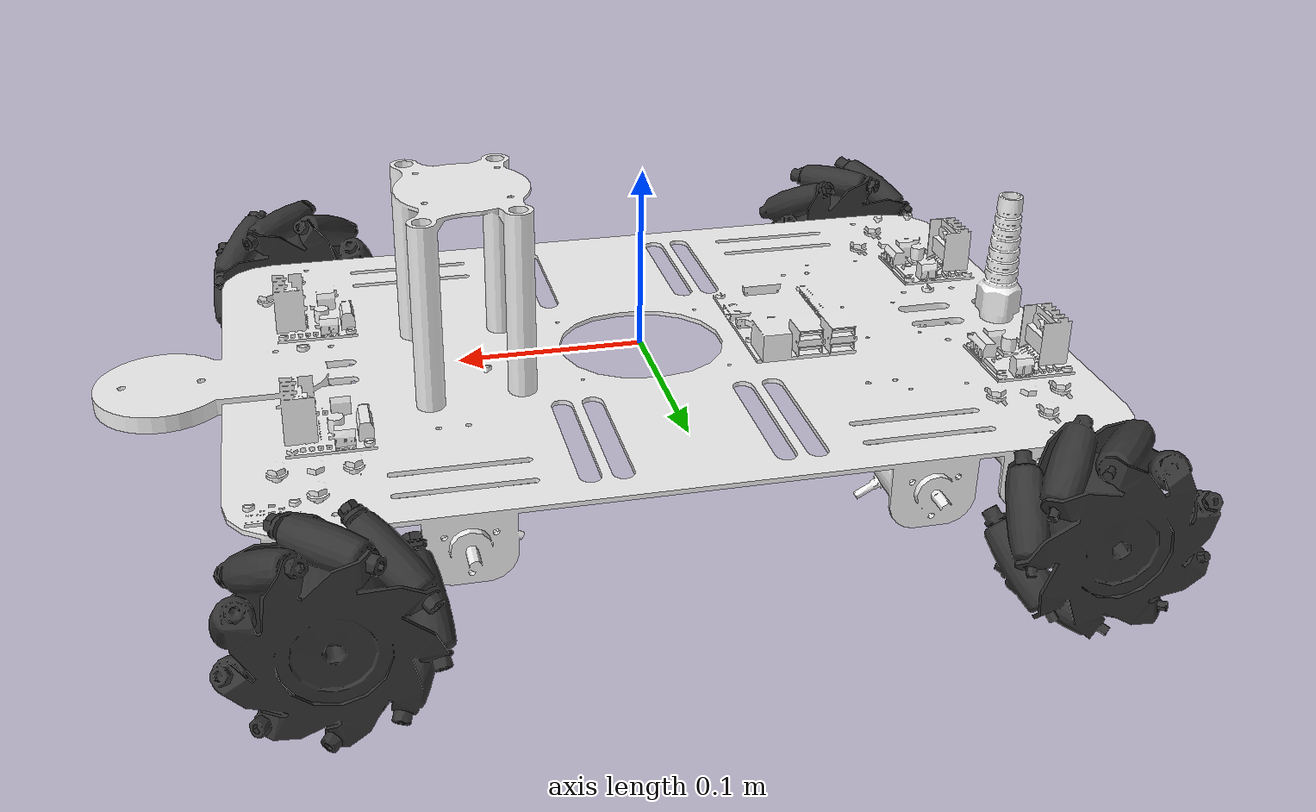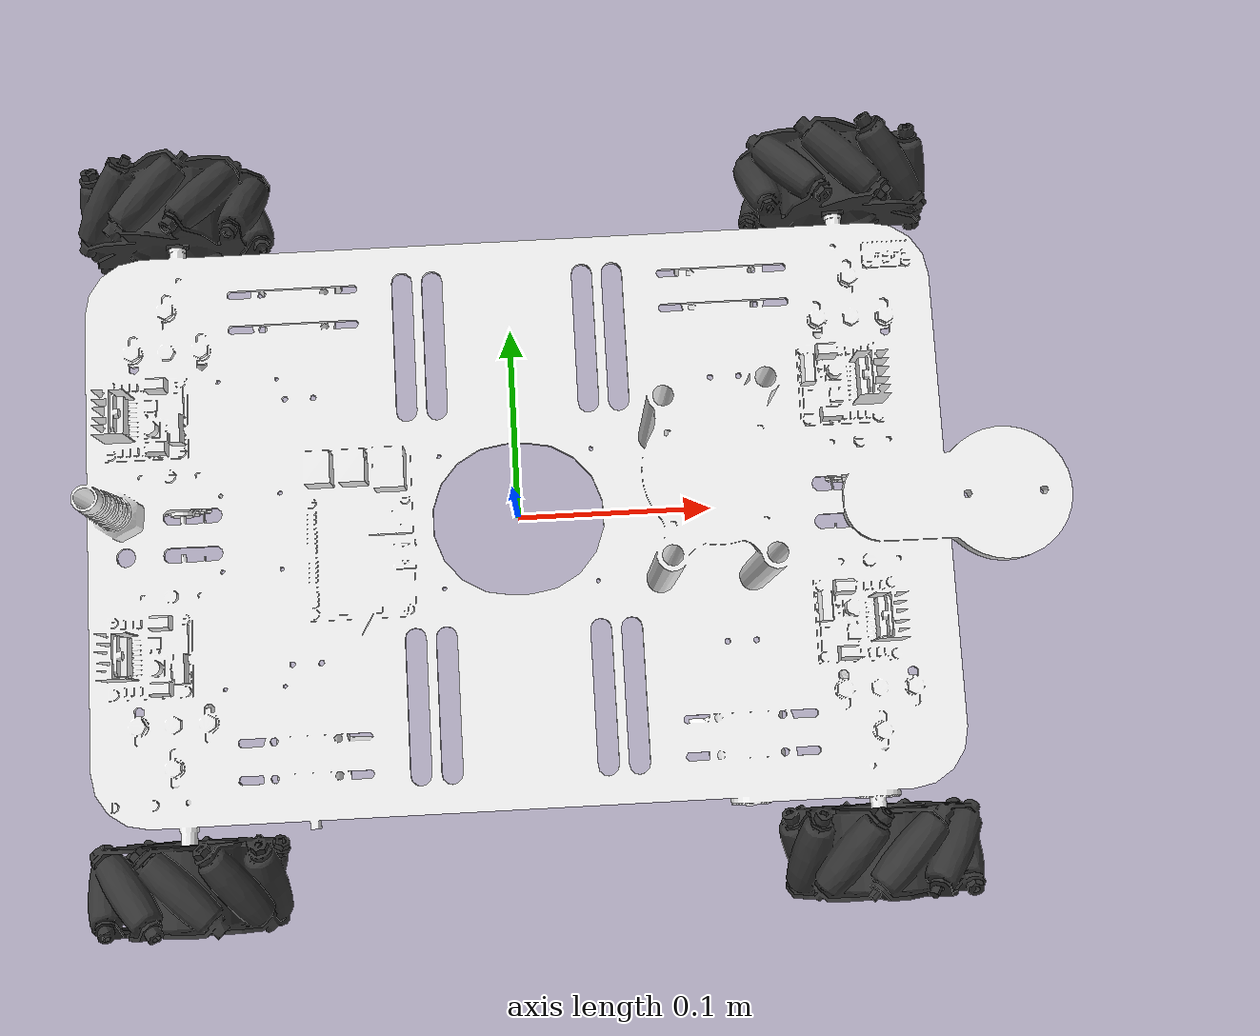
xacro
<?xml version="1.0"?>
<robot xmlns:xacro="http://www.ros.org/wiki/xacro">

  <!-- Robot base properties -->
  <xacro:property name="wheel_separation_width" value="0.402" />
  <xacro:property name="wheel_separation_length" value="0.363" />
  <xacro:property name="wheel_height" value="-0.0285" />
  <xacro:property name="wheel_radius" value="0.075" />
  <xacro:property name="wheel_width" value="0.037" />

  <!-- Material definitions -->
  <xacro:macro name="material_chassis">
    <material name="chassis_material">
      <color rgba="0.95 0.95 0.95 1" />
    </material>
  </xacro:macro>

  <xacro:macro name="material_wheel">
    <material name="wheel_material">
      <color rgba="0.2 0.2 0.2 1" />
    </material>
  </xacro:macro>

  <!-- base link definition -->
  <link name="base_link">
  </link>
  <!-- chassis link definition -->

  <link name="chassis_link">
    <inertial>
      <origin xyz="0.0099205 -0.00027461 -0.012024" rpy="0 0 0" />
      <mass value="1.1181" />
      <inertia
        ixx="0.00254" ixy="-1.1679E-08" ixz="8.617E-07"
        iyy="0.0054872" iyz="7.5586E-08" izz="0.0077966" />
    </inertial>
    <visual>
      <origin xyz="0 0 0" rpy="0 0 0" />
      <geometry>
        <mesh filename="file://$(find mecanum_description)/meshes/chassis_link.STL" />
      </geometry>
      <xacro:material_chassis />
    </visual>
    <collision>
      <origin xyz="0 0 0" rpy="0 0 0" />
      <geometry>
        <mesh filename="file://$(find mecanum_description)/meshes/chassis_link.STL" />
      </geometry>
    </collision>
  </link>

  <joint name="base_chassis_joint" type="fixed">
    <parent link="base_link" />
    <child link="chassis_link" />
  </joint>

  <!-- Wheel macro -->
  <xacro:macro name="wheel" params="prefix parent x y z rpy axis_xyz">
    <link name="${prefix}_wheel_link">
      <inertial>
        <origin xyz="-4.136E-10 1.1142E-10 -0.018573" rpy="0 0 0" />
        <mass value="0.22689" />
        <inertia
          ixx="6.1082E-05" ixy="-7.4147E-16" ixz="3.0289E-13"
          iyy="6.1082E-05" iyz="1.2454E-12" izz="8.2539E-05" />
      </inertial>
      <visual>
        <origin xyz="0 0 0" rpy="0 0 0" />
        <geometry>
          <mesh filename="file://$(find mecanum_description)//meshes/${prefix}_wheel_link.STL" />
        </geometry>
        <xacro:material_wheel />
      </visual>
      <collision>
        <origin xyz="0 0 0" rpy="0 0 0" />
        <geometry>
          <mesh filename="file://$(find mecanum_description)/meshes/${prefix}_wheel_link.STL" />
        </geometry>
      </collision>
    </link>

    <joint name="chassis_${prefix}_wheel_joint" type="continuous">
      <origin xyz="${x} ${y} ${z}" rpy="${rpy}" />
      <parent link="${parent}" />
      <child link="${prefix}_wheel_link" />
      <axis xyz="${axis_xyz}" />
    </joint>
  </xacro:macro>

  <!-- Instantiate all four wheels -->
  <xacro:macro name="robot_wheels" params="parent">
    <xacro:wheel prefix="fr" parent="${parent}"
      x="0.18096" y="-0.20094" z="${wheel_height}"
      rpy="1.5708 0 0" axis_xyz="0 0 1" />

    <xacro:wheel prefix="fl" parent="${parent}"
      x="0.18096" y="0.20096" z="${wheel_height}"
      rpy="-1.5708 0 0" axis_xyz="0 0 -1" />

    <xacro:wheel prefix="rr" parent="${parent}"
      x="-0.182038628611086" y="-0.200941316659697" z="${wheel_height}"
      rpy="1.5707963267949 0 0" axis_xyz="0 0 -1" />

    <xacro:wheel prefix="rl" parent="${parent}"
      x="-0.182038628611087" y="0.200958683340303" z="${wheel_height}"
      rpy="-1.5707963267949 0 0" axis_xyz="0 0 1" />
  </xacro:macro>

  <xacro:robot_wheels parent="chassis_link" />

</robot>
